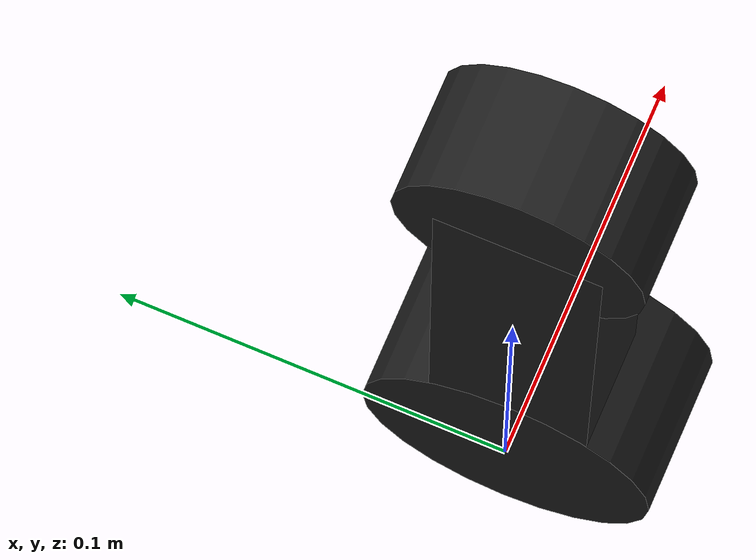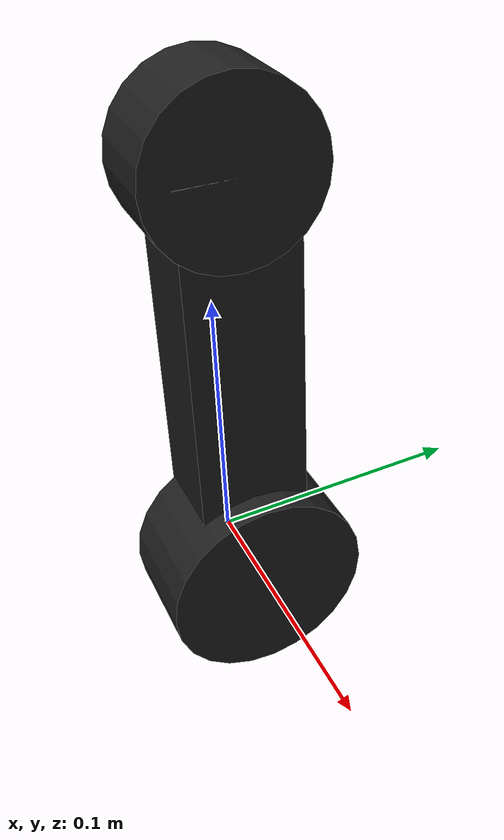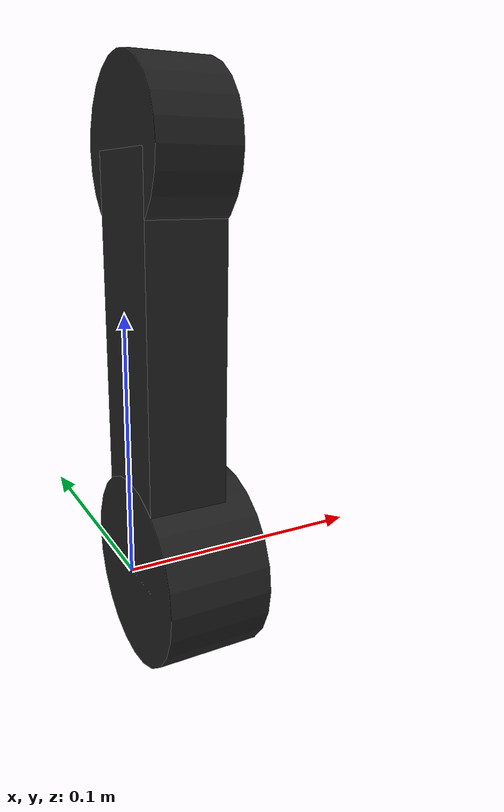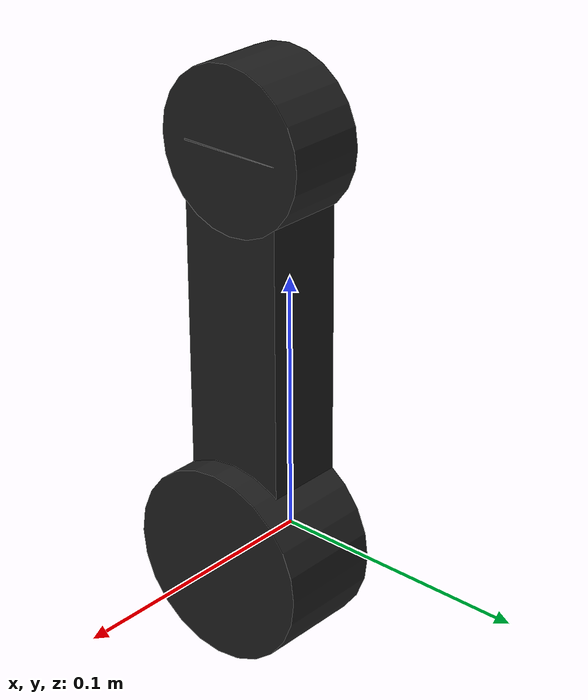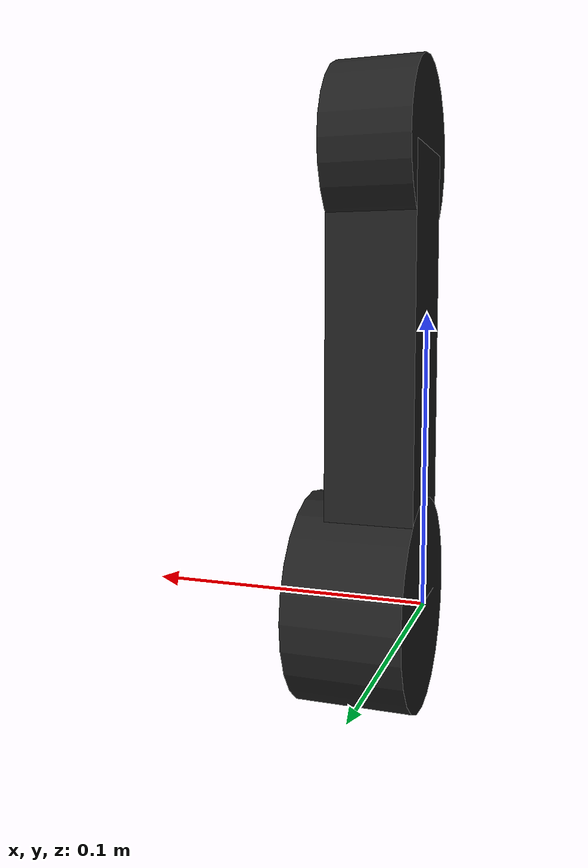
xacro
<?xml version="1.0"?>
<robot xmlns:xacro="http://www.ros.org/wiki/xacro">

  <link name="link2_part1">
    <visual>
      <geometry>
        <cylinder length="0.04" radius="0.037"/>
      </geometry>
      <origin xyz="0.02 0 0" rpy="0 1.57075 0"/>
      <material name="black"/>
    </visual>
  </link>

  <joint name="link2_fixed1" type="fixed">
    <parent link="link2_part1"/>
    <child link="link2_part2"/>
    <origin xyz="0 0 0" rpy="0 0 0"/>
  </joint>

  <link name="link2_part2">
    <visual>
      <geometry>
        <box size="0.03 0.04 0.155"/>
      </geometry>
      <origin xyz="0.015 0 0.0775" rpy="0 0 0"/>
      <material name="black"/>
    </visual>
  </link>

  <joint name="link2_fixed2" type="fixed">
    <parent link="link2_part2"/>
    <child link="link2_part3"/>
    <origin xyz="0 0 0.155" rpy="0 0 0"/>
  </joint>

  <link name="link2_part3">
    <visual>
      <geometry>
        <cylinder length="0.03" radius="0.03"/>
      </geometry>
      <origin xyz="0.015 0 0" rpy="0 1.57075 0"/>
      <material name="black"/>
    </visual>
  </link>
</robot>
